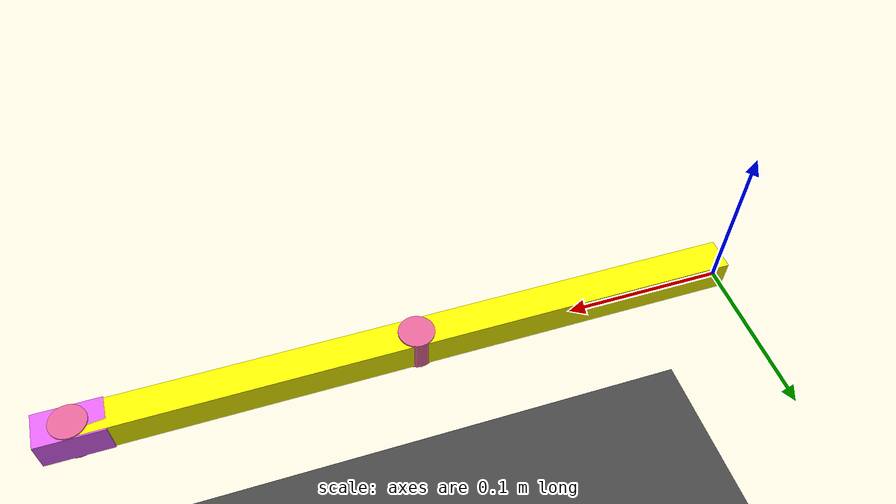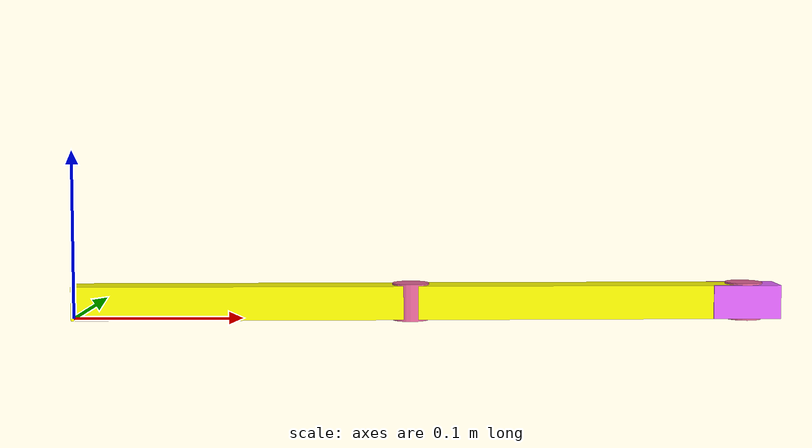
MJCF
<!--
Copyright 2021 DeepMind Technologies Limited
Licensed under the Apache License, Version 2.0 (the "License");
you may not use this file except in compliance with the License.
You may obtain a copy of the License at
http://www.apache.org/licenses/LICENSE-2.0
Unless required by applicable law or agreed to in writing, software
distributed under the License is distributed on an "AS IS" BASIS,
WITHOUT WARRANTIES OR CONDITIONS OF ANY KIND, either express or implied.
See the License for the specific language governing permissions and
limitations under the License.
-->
<mujoco model="2-link arm">
<compiler angle="radian"/>
  <option timestep="0.001" iterations="50" solver="Newton" tolerance="1e-10" gravity="0 0 -9.81"/>

  <visual>
    <rgba haze=".3 .3 .3 1"/>
  </visual>

  <default>
    <joint type="hinge" pos="0 0 0" axis="0 0 1" limited="true" range="-3.14 3.14" />
  </default>

  <asset>
    <texture type="skybox" builtin="gradient" rgb1="0.6 0.6 0.6" rgb2="0 0 0" width="512" height="512"/>
    <texture name="texplane" type="2d" builtin="checker" rgb1=".25 .25 .25" rgb2=".3 .3 .3" width="512" height="512" mark="cross" markrgb=".8 .8 .8"/>
    <material name="matplane" reflectance="0.3" texture="texplane" texrepeat="1 1" texuniform="true"/>
  </asset>

  <worldbody>
    <geom name="floor" pos="0 0 -0.5" size="0 0 1" type="plane" material="matplane"/>

    <light directional="true" diffuse=".8 .8 .8" specular=".2 .2 .2" pos="0 0 5" dir="0 0 -1"/>
    <body name="body0" pos="0 0 .01">
      <inertial pos="0 0 0" mass="1" diaginertia="0.0002 0.04083 0.04083"/>
      <geom name="hinge0" type="cylinder" pos=" 0.2 0.0 0.0" size=".011 .011" rgba="0.9 0.4 0.6 1"/>
      <joint name="joint0"  axis="0 0 1" pos="0 0 0"  type="hinge" armature="1.0" damping="1"/>
      <geom name="link1" type="box" contype="0" conaffinity="0" pos="0.1 0.0 0.0" size="0.1 0.01 0.01" rgba="1.0 1.0 0.0 1"/>
        <body name="body1" pos="0.2 0 0.0">
        <inertial pos="0 0 0" mass="1" diaginertia="0.0002 0.04083 0.04083"/>

        <geom name="hinge1" type="cylinder" pos=" 0.2 0.0 0.0" size=".011 .011" rgba="0.9 0.4 0.6 1"/>
        <joint name="joint1" axis="0 0 1" pos="0 0 0"  type="hinge" armature="1.0" damping="1"/>
        <geom name="link2" type="box" contype="0" conaffinity="0" pos=" 0.1 0 0.0" size="0.1 0.01 0.01" rgba="1.0 1.0 0.0 1"/>
          <body name="body2" pos="0.2 0 0.0">
          <inertial pos="0 0 0" mass="0.5" diaginertia="0.0002 0.01333 0.01333"/>
          <site name="hand_site" pos="0 0 0" type="box"  size=".02 .011 .01" rgba="0.9 0.4 1 1"/>

          </body>
        </body>
    </body>

  </worldbody>

  <actuator>
    <motor  name="j1" joint="joint0" />
    <motor  name="j2" joint="joint1" />
  </actuator>

  <sensor>
      <force name = "force_sensor" site="hand_site"/>
      <torque name = "torque_sensor" site="hand_site"/>
    </sensor>

</mujoco>
